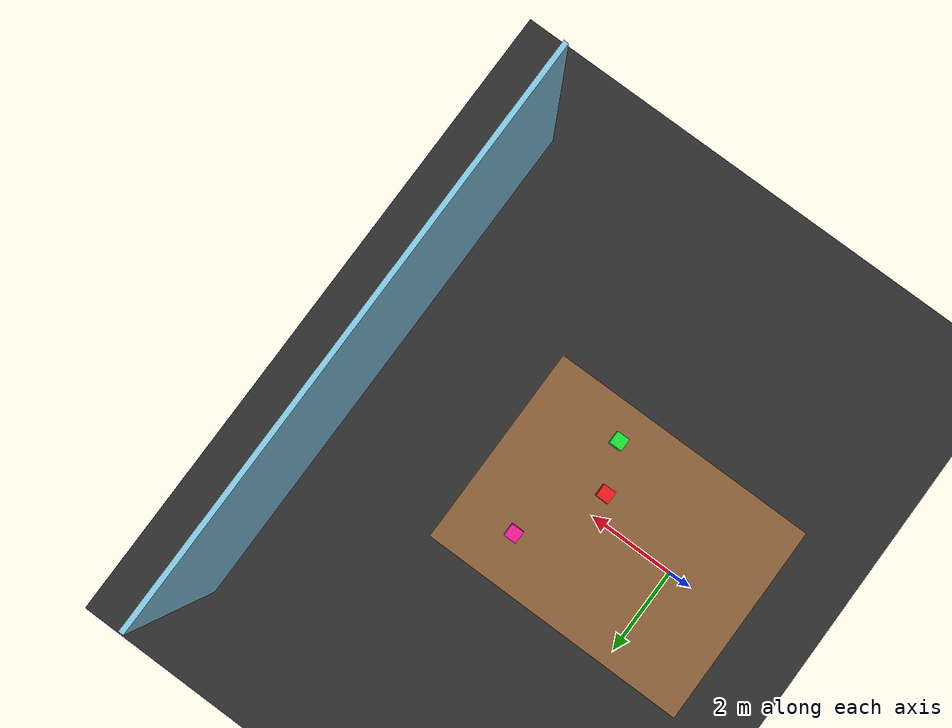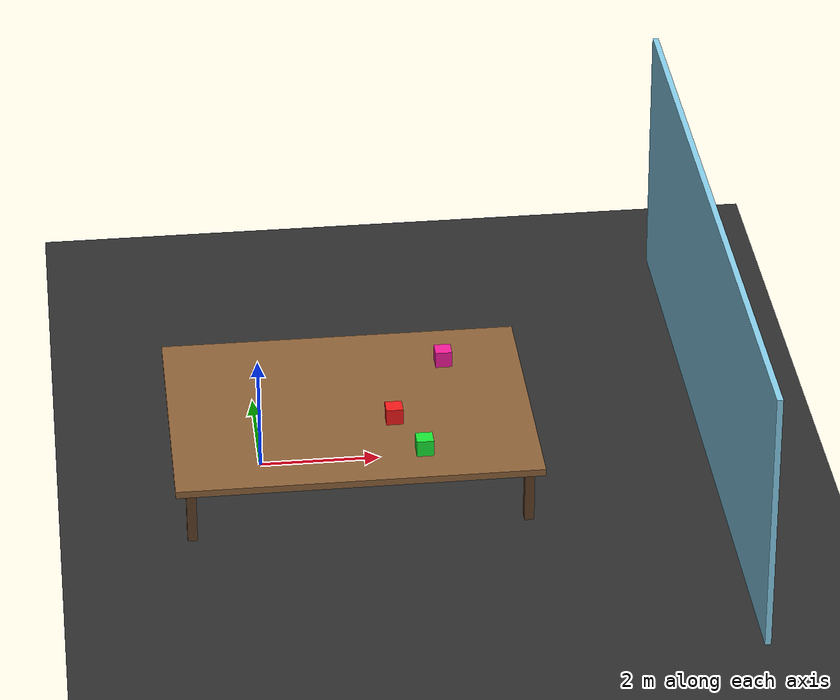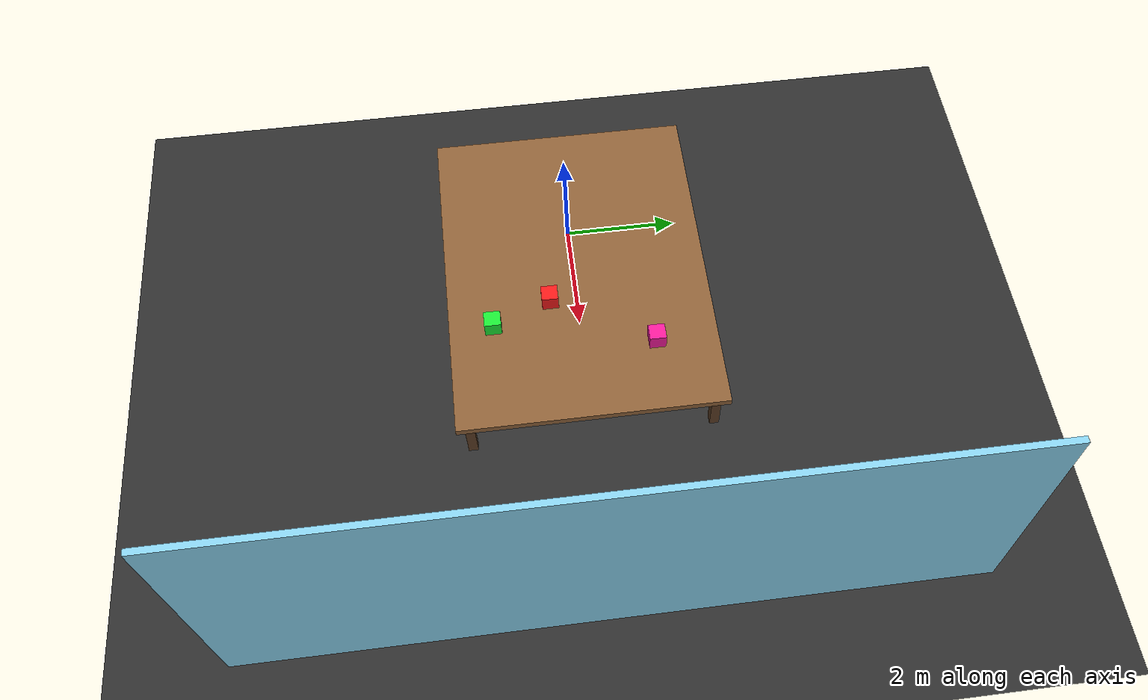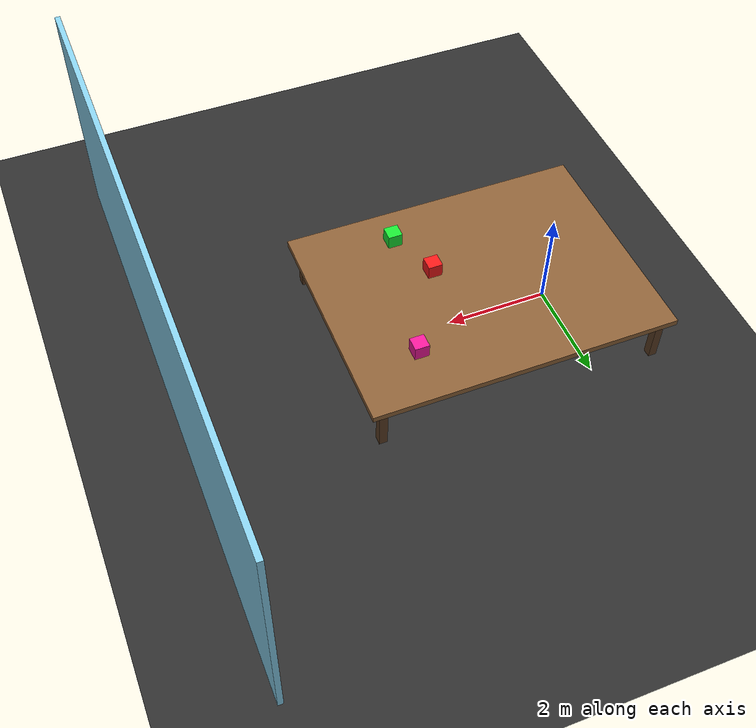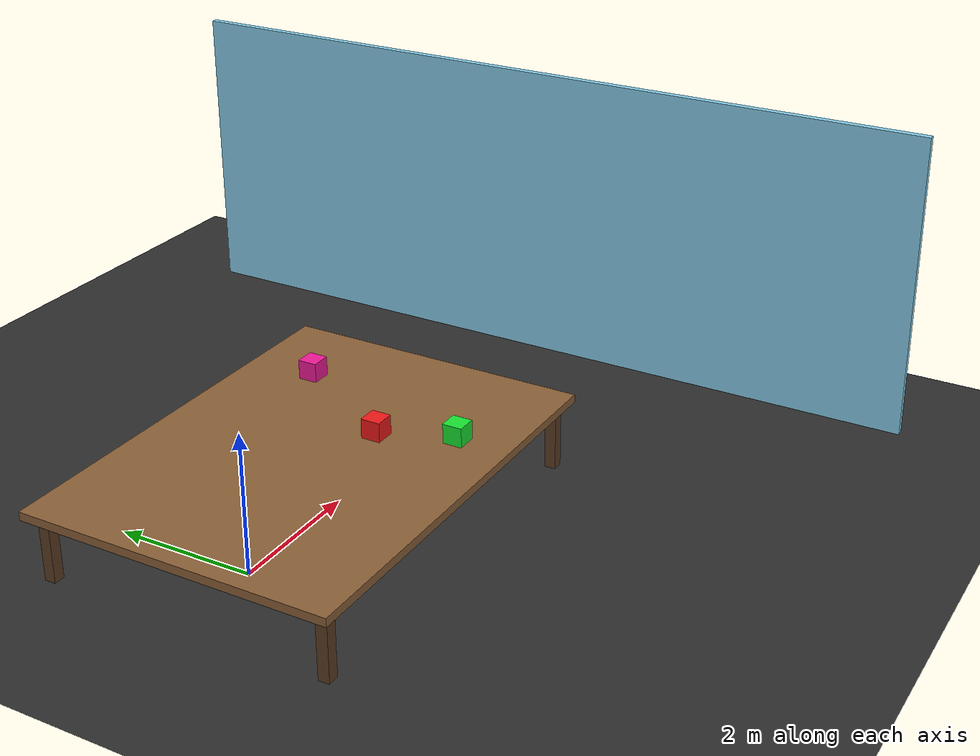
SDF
<?xml version="1.0"?>

<sdf version="1.9">
  <world name="perception_world">

    <!-- WORLD SYSTEM PLUGINS      -->

    <plugin
      filename="gz-sim-physics-system"
      name="gz::sim::systems::Physics"/>

    <plugin
      filename="gz-sim-user-commands-system"
      name="gz::sim::systems::UserCommands"/>

    <plugin
      filename="gz-sim-scene-broadcaster-system"
      name="gz::sim::systems::SceneBroadcaster"/>

    <plugin
      filename="gz-sim-sensors-system"
      name="gz::sim::systems::Sensors">
      <render_engine>ogre2</render_engine>
    </plugin>

    <!-- LIGHT                     -->

    <light type="directional" name="sun">
      <pose>0 0 12 0 0 0</pose>
      <diffuse>0.85 0.85 0.85 1</diffuse>
      <specular>0.2 0.2 0.2 1</specular>
      <direction>-0.4 0.1 -0.9</direction>
    </light>

    <!-- GROUND                    -->

    <model name="ground_plane">
      <static>true</static>
      <link name="link">
        <collision name="collision">
          <geometry>
            <plane>
              <normal>0 0 1</normal>
              <size>35 35</size>
            </plane>
          </geometry>
        </collision>

        <visual name="visual">
          <geometry>
            <plane>
              <normal>0 0 1</normal>
              <size>35 35</size>
            </plane>
          </geometry>
          <material>
            <ambient>0.15 0.15 0.15 1</ambient>
            <diffuse>0.18 0.18 0.18 1</diffuse>
            <specular>0.05 0.05 0.05 1</specular>
          </material>
        </visual>
      </link>
    </model>

    <!-- BACK WALL                 -->

    <model name="back_wall">
      <static>true</static>
      <pose>7.5 0 2.25 0 0 0</pose>

      <link name="wall_link">
        <collision name="collision">
          <geometry>
            <box>
              <size>0.10 12.0 4.5</size>
            </box>
          </geometry>
        </collision>

        <visual name="visual">
          <geometry>
            <box>
              <size>0.10 12.0 4.5</size>
            </box>
          </geometry>
          <material>
            <ambient>0.53 0.81 0.92 1</ambient>
            <diffuse>0.53 0.81 0.92 1</diffuse>
            <specular>0.08 0.08 0.08 1</specular>
          </material>
        </visual>
      </link>
    </model>

    <!-- LARGE TABLE WITH 4 LEGS   -->

    <model name="table">
      <static>true</static>
      <pose>1.5 0 0 0 0 0</pose>

      <link name="table_link">

        <!-- TABLE TOP -->
        <collision name="table_top_collision">
          <pose>0 0 0.98 0 0 0</pose>
          <geometry>
            <box>
              <size>6.0 4.5 0.12</size>
            </box>
          </geometry>
        </collision>

        <visual name="table_top_visual">
          <pose>0 0 0.98 0 0 0</pose>
          <geometry>
            <box>
              <size>6.0 4.5 0.12</size>
            </box>
          </geometry>
          <material>
            <ambient>0.50 0.35 0.20 1</ambient>
            <diffuse>0.55 0.38 0.22 1</diffuse>
            <specular>0.05 0.05 0.05 1</specular>
          </material>
        </visual>

        <!-- LEG 1 -->
        <collision name="leg1_collision">
          <pose>2.75 2.05 0.49 0 0 0</pose>
          <geometry>
            <box>
              <size>0.16 0.16 0.98</size>
            </box>
          </geometry>
        </collision>

        <visual name="leg1_visual">
          <pose>2.75 2.05 0.49 0 0 0</pose>
          <geometry>
            <box>
              <size>0.16 0.16 0.98</size>
            </box>
          </geometry>
          <material>
            <ambient>0.32 0.22 0.12 1</ambient>
            <diffuse>0.36 0.24 0.14 1</diffuse>
          </material>
        </visual>

        <!-- LEG 2 -->
        <collision name="leg2_collision">
          <pose>2.75 -2.05 0.49 0 0 0</pose>
          <geometry>
            <box>
              <size>0.16 0.16 0.98</size>
            </box>
          </geometry>
        </collision>

        <visual name="leg2_visual">
          <pose>2.75 -2.05 0.49 0 0 0</pose>
          <geometry>
            <box>
              <size>0.16 0.16 0.98</size>
            </box>
          </geometry>
          <material>
            <ambient>0.32 0.22 0.12 1</ambient>
            <diffuse>0.36 0.24 0.14 1</diffuse>
          </material>
        </visual>

        <!-- LEG 3 -->
        <collision name="leg3_collision">
          <pose>-2.75 2.05 0.49 0 0 0</pose>
          <geometry>
            <box>
              <size>0.16 0.16 0.98</size>
            </box>
          </geometry>
        </collision>

        <visual name="leg3_visual">
          <pose>-2.75 2.05 0.49 0 0 0</pose>
          <geometry>
            <box>
              <size>0.16 0.16 0.98</size>
            </box>
          </geometry>
          <material>
            <ambient>0.32 0.22 0.12 1</ambient>
            <diffuse>0.36 0.24 0.14 1</diffuse>
          </material>
        </visual>

        <!-- LEG 4 -->
        <collision name="leg4_collision">
          <pose>-2.75 -2.05 0.49 0 0 0</pose>
          <geometry>
            <box>
              <size>0.16 0.16 0.98</size>
            </box>
          </geometry>
        </collision>

        <visual name="leg4_visual">
          <pose>-2.75 -2.05 0.49 0 0 0</pose>
          <geometry>
            <box>
              <size>0.16 0.16 0.98</size>
            </box>
          </geometry>
          <material>
            <ambient>0.32 0.22 0.12 1</ambient>
            <diffuse>0.36 0.24 0.14 1</diffuse>
          </material>
        </visual>

      </link>
    </model>

    <!-- LARGER PERCEPTION OBJECT  -->

    <model name="red_cube">
      <pose>2.2 -0.5 1.18 0 0 0</pose>

      <link name="cube_link">
        <inertial>
          <mass>1.2</mass>
          <inertia>
            <ixx>0.01568</ixx>
            <ixy>0</ixy>
            <ixz>0</ixz>
            <iyy>0.01568</iyy>
            <iyz>0</iyz>
            <izz>0.01568</izz>
          </inertia>
        </inertial>

        <collision name="collision">
          <geometry>
            <box>
              <size>0.28 0.28 0.28</size>
            </box>
          </geometry>
        </collision>

        <visual name="visual">
          <geometry>
            <box>
              <size>0.28 0.28 0.28</size>
            </box>
          </geometry>
          <material>
            <ambient>0.95 0.10 0.10 1</ambient>
            <diffuse>0.95 0.10 0.10 1</diffuse>
            <specular>0.10 0.10 0.10 1</specular>
          </material>
        </visual>
      </link>
    </model>

    <model name="pink_cube">
      <pose>3.2 1.2 1.18 0 0 0</pose>

      <link name="cube2_link">
        <inertial>
          <mass>1.2</mass>
          <inertia>
            <ixx>0.01568</ixx>
            <ixy>0</ixy>
            <ixz>0</ixz>
            <iyy>0.01568</iyy>
            <iyz>0</iyz>
            <izz>0.01568</izz>
          </inertia>
        </inertial>

        <collision name="collision">
          <geometry>
            <box>
              <size>0.28 0.28 0.28</size>
            </box>
          </geometry>
        </collision>

        <visual name="visual">
          <geometry>
            <box>
              <size>0.28 0.28 0.28</size>
            </box>
          </geometry>
          <material>
            <ambient>0.95 0.10 0.60 1</ambient>
            <diffuse>0.95 0.10 0.60 1</diffuse>
            <specular>0.10 0.10 0.60 1</specular>
          </material>
        </visual>
      </link>
    </model>

    <model name="green_cube">
      <pose>2.6 -1.5 1.18 0 0 0</pose>

      <link name="cube3_link">
        <inertial>
          <mass>1.2</mass>
          <inertia>
            <ixx>0.01568</ixx>
            <ixy>0</ixy>
            <ixz>0</ixz>
            <iyy>0.01568</iyy>
            <iyz>0</iyz>
            <izz>0.01568</izz>
          </inertia>
        </inertial>

        <collision name="collision">
          <geometry>
            <box>
              <size>0.28 0.28 0.28</size>
            </box>
          </geometry>
        </collision>

        <visual name="visual">
          <geometry>
            <box>
              <size>0.28 0.28 0.28</size>
            </box>
          </geometry>
          <material>
            <ambient>0.1 0.9 0.2 1</ambient>
            <diffuse>0.1 0.9 0.2 1</diffuse>
            <specular>0.9 0.2 0.2 1</specular>
          </material>
        </visual>
      </link>
    </model>
  </world>
</sdf>
